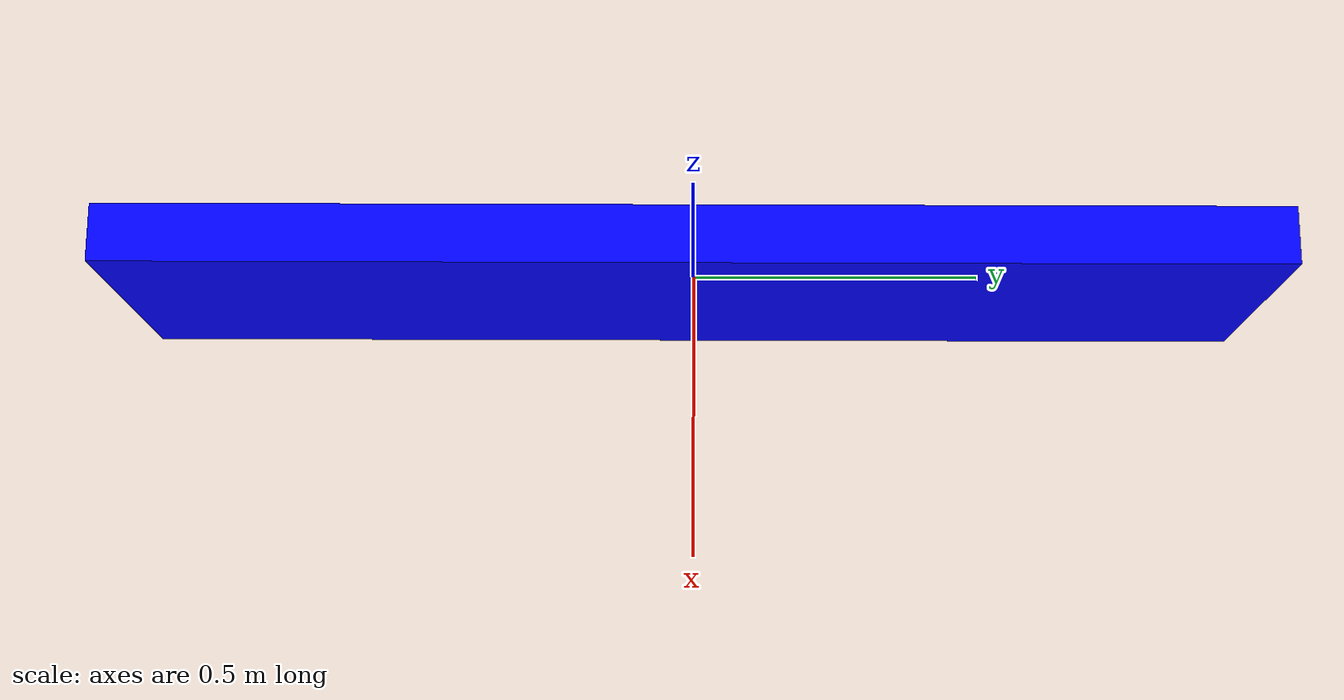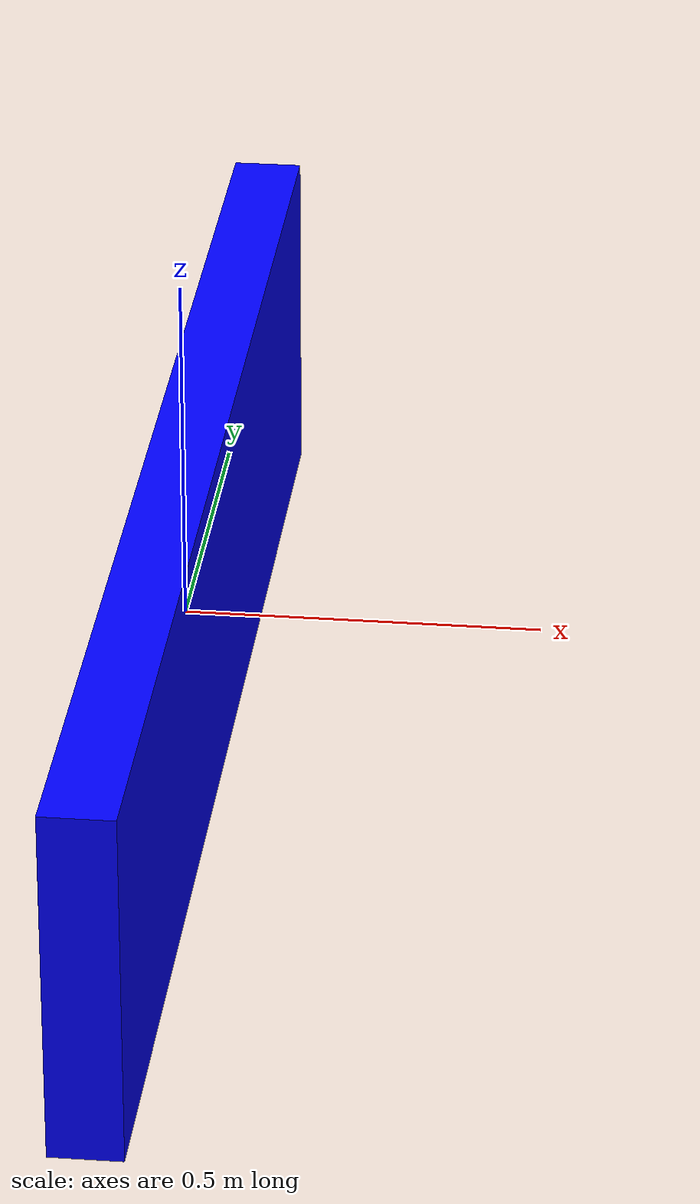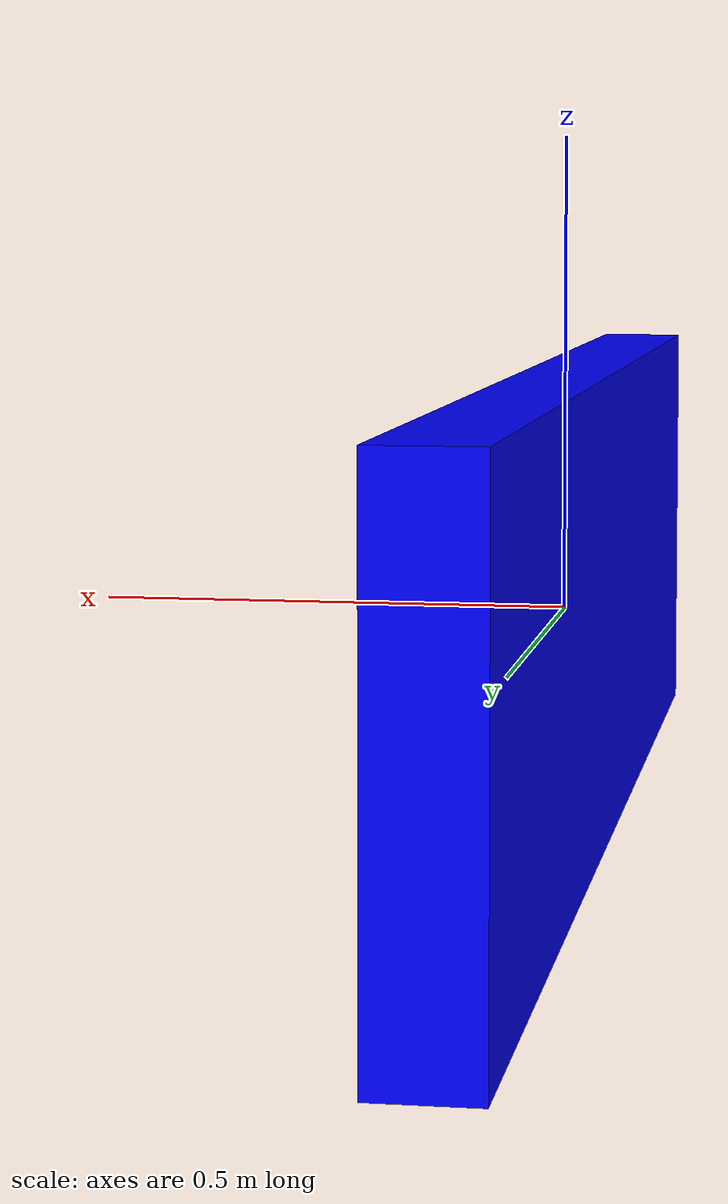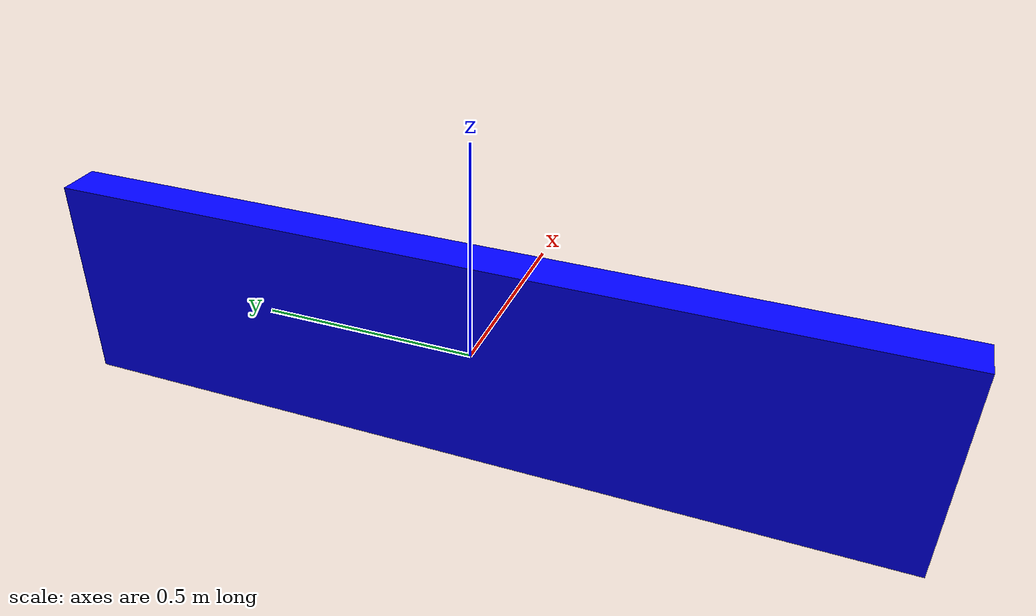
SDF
<?xml version="1.0"?>
<sdf version="1.6">
  <model name="wall_obstacle">
    <static>true</static>
    <link name="link">
      <collision name="collision">
        <geometry>
          <box>
            <size>0.1 2.0 0.5</size>
          </box>
        </geometry>
      </collision>
      <visual name="visual">
        <geometry>
          <box>
            <size>0.1 2.0 0.5</size>
          </box>
        </geometry>
        <material>
          <ambient>0.0 0.0 1.0 1</ambient>
          <diffuse>0.0 0.0 1.0 1</diffuse>
          <specular>0.1 0.1 0.1 1</specular>
        </material>
      </visual>
    </link>
  </model>
</sdf>
